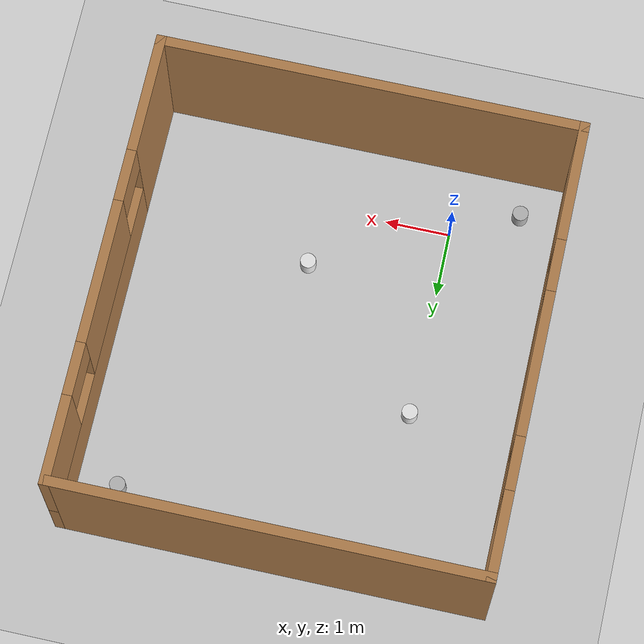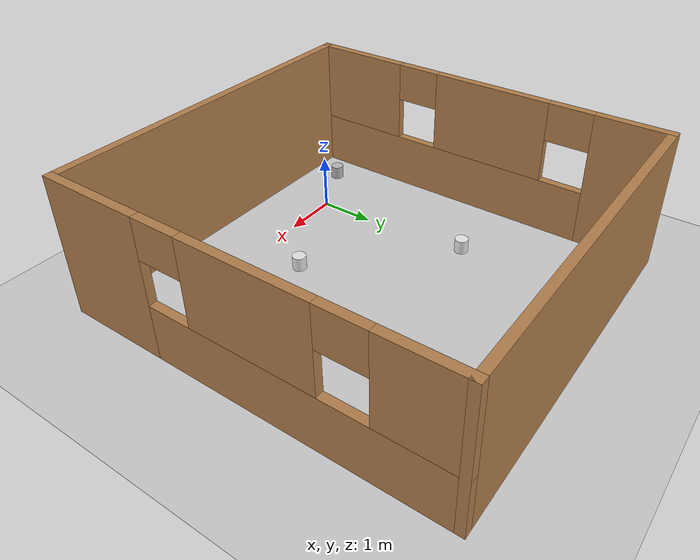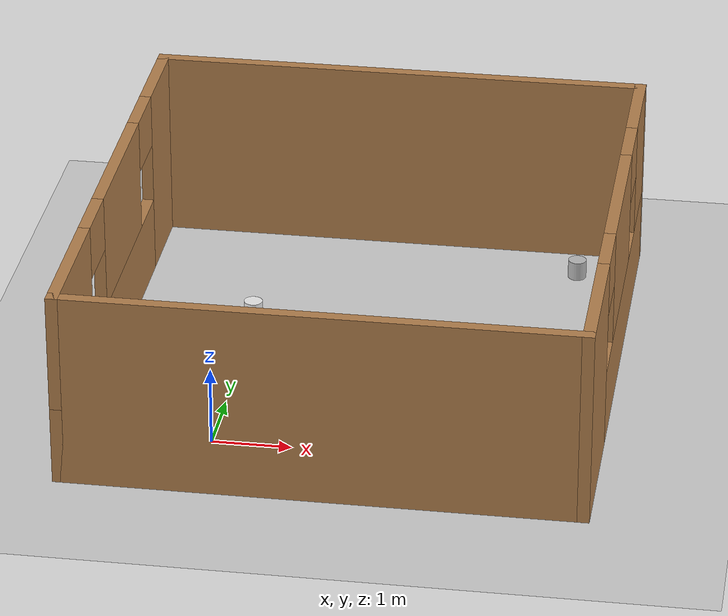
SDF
<sdf version="1.6">
 <world name="default">
  <light name="sun" type="directional">
   <pose>0 0 10 0 -0 0</pose>
   <diffuse>0.8 0.8 0.8 1</diffuse>
   <specular>0.2 0.2 0.2 1</specular>
   <attenuation>
    <range>1000</range>
    <constant>0.9</constant>
    <linear>0.01</linear>
    <quadratic>0.001</quadratic>
   </attenuation>
   <direction>0.5 0.1 -0.9</direction>
  </light>
  <model name="ground_plane">
   <static>1</static>
   <link name="link">
    <collision name="collision">
     <geometry><plane><normal>0 0 1</normal><size>100 100</size></plane></geometry>
     <surface><friction><ode><mu>100</mu><mu2>50</mu2></ode></friction></surface>
    </collision>
    <visual name="visual">
     <cast_shadows>0</cast_shadows>
     <geometry><plane><normal>0 0 1</normal><size>100 100</size></plane></geometry>
     <material>
      <script><uri>file://media/materials/scripts/gazebo.material</uri><name>Gazebo/Grey</name></script>
     </material>
    </visual>
    <velocity_decay><linear>0</linear><angular>0</angular></velocity_decay>
   </link>
  </model>
  <gravity>0 0 -9.8</gravity>
  <magnetic_field>6e-06 2.3e-05 -4.2e-05</magnetic_field>
  <atmosphere type="adiabatic"/>
  <physics name="default_physics" default="0" type="ode">
   <real_time_update_rate>000.0</real_time_update_rate>
   <max_step_size>0.001</max_step_size>
   <real_time_factor>1</real_time_factor>
  </physics>
  <model name="obstacle">
   <pose>1 2 -0.000873 -2.2e-05 2.3e-05 0</pose>
   <link name="obstacle">
    <collision name="obstacle_2">
     <pose>-1 1 0.25 0 -0 0</pose>
     <geometry><cylinder><radius>0.12</radius><length>0.25</length></cylinder></geometry>
    </collision>
    <visual name="obstacle_2">
     <pose>-1 1 0.25 0 -0 0</pose>
     <geometry><cylinder><radius>0.12</radius><length>0.25</length></cylinder></geometry>
     <material>
      <script><uri>file://media/materials/scripts/gazebo.material</uri><name>Gazebo/White</name></script>
     </material>
    </visual>
    <collision name="obstacle_3">
     <pose>1 -1 0.25 0 -0 0</pose>
     <geometry><cylinder><radius>0.12</radius><length>0.25</length></cylinder></geometry>
    </collision>
    <visual name="obstacle_3">
     <pose>1 -1 0.25 0 -0 0</pose>
     <geometry><cylinder><radius>0.12</radius><length>0.25</length></cylinder></geometry>
     <material>
      <script><uri>file://media/materials/scripts/gazebo.material</uri><name>Gazebo/White</name></script>
     </material>
    </visual>
    <inertial>
     <inertia><ixx>1</ixx><ixy>0</ixy><ixz>0</ixz><iyy>1</iyy><iyz>0</iyz><izz>1</izz></inertia>
     <mass>1</mass>
    </inertial>
   </link>
  </model>
  <model name="obstacle_5">
   <pose>-0.999999 -0.499999 0.124121 -2e-06 5e-06 -1.3e-05</pose>
   <link name="link">
    <collision name="collision">
     <geometry><cylinder><radius>0.12</radius><length>0.25</length></cylinder></geometry>
    </collision>
    <visual name="visual">
     <geometry><cylinder><radius>0.12</radius><length>0.25</length></cylinder></geometry>
    </visual>
    <inertial>
     <inertia><ixx>1</ixx><ixy>0</ixy><ixz>0</ixz><iyy>1</iyy><iyz>0</iyz><izz>1</izz></inertia>
     <mass>1</mass>
    </inertial>
   </link>
  </model>
  <model name="obstacle_6">
   <pose>4 5 0.124121 -2e-06 5e-06 -1.3e-05</pose>
   <link name="link">
    <collision name="collision">
     <geometry><cylinder><radius>0.12</radius><length>0.25</length></cylinder></geometry>
    </collision>
    <visual name="visual">
     <geometry><cylinder><radius>0.12</radius><length>0.25</length></cylinder></geometry>
    </visual>
    <inertial>
     <inertia><ixx>1</ixx><ixy>0</ixy><ixz>0</ixz><iyy>1</iyy><iyz>0</iyz><izz>1</izz></inertia>
     <mass>1</mass>
    </inertial>
   </link>
   <plugin name="obstacle_2" filename="libobstacle_2.so"/>
  </model>
  <scene><ambient>0.4 0.4 0.4 1</ambient><background>0.7 0.7 0.7 1</background><shadows>0</shadows></scene>
  <spherical_coordinates>
   <surface_model>EARTH_WGS84</surface_model>
   <latitude_deg>0</latitude_deg>
   <longitude_deg>0</longitude_deg>
   <elevation>0</elevation>
   <heading_deg>0</heading_deg>
  </spherical_coordinates>
  <model name="room_clone_clone">
   <pose>1.52319 2.27145 0 0 -0 0</pose>
   <link name="Wall_0">
    <collision name="Wall_0_Collision">
     <geometry><box><size>6.5 0.15 2.5</size></box></geometry>
     <pose>0 0 1.25 0 -0 0</pose>
    </collision>
    <visual name="Wall_0_Visual">
     <pose>0 0 1.25 0 -0 0</pose>
     <geometry><box><size>6.5 0.15 2.5</size></box></geometry>
     <material>
      <script><uri>file://media/materials/scripts/gazebo.material</uri><name>Gazebo/Wood</name></script>
      <ambient>1 1 1 1</ambient>
     </material>
    </visual>
    <pose>0 -3.425 0 0 -0 0</pose>
   </link>
   <link name="Wall_1">
    <pose>3.175 0 0 0 -0 1.5708</pose>
    <visual name="Wall_1_Visual_0">
     <pose>-2.56946 0 1.25 0 -0 0</pose>
     <geometry><box><size>1.86109 0.15 2.5</size></box></geometry>
     <material>
      <script><uri>file://media/materials/scripts/gazebo.material</uri><name>Gazebo/Wood</name></script>
      <ambient>0.760784 0.662745 0.627451 1</ambient>
     </material>
    </visual>
    <collision name="Wall_1_Collision_0">
     <geometry><box><size>1.86109 0.15 2.5</size></box></geometry>
     <pose>-2.56946 0 1.25 0 -0 0</pose>
    </collision>
    <visual name="Wall_1_Visual_1">
     <pose>0.930543 0 0.5 0 -0 0</pose>
     <geometry><box><size>5.13891 0.15 1</size></box></geometry>
     <material>
      <script><uri>file://media/materials/scripts/gazebo.material</uri><name>Gazebo/Wood</name></script>
      <ambient>0.760784 0.662745 0.627451 1</ambient>
     </material>
    </visual>
    <collision name="Wall_1_Collision_1">
     <geometry><box><size>5.13891 0.15 1</size></box></geometry>
     <pose>0.930543 0 0.5 0 -0 0</pose>
    </collision>
    <visual name="Wall_1_Visual_2">
     <pose>0.261087 0 1.75 0 -0 0</pose>
     <geometry><box><size>2.2 0.15 1.5</size></box></geometry>
     <material>
      <script><uri>file://media/materials/scripts/gazebo.material</uri><name>Gazebo/Wood</name></script>
      <ambient>0.760784 0.662745 0.627451 1</ambient>
     </material>
    </visual>
    <collision name="Wall_1_Collision_2">
     <geometry><box><size>2.2 0.15 1.5</size></box></geometry>
     <pose>0.261087 0 1.75 0 -0 0</pose>
    </collision>
    <visual name="Wall_1_Visual_3">
     <pose>2.83054 0 1.75 0 -0 0</pose>
     <geometry><box><size>1.33891 0.15 1.5</size></box></geometry>
     <material>
      <script><uri>file://media/materials/scripts/gazebo.material</uri><name>Gazebo/Wood</name></script>
      <ambient>0.760784 0.662745 0.627451 1</ambient>
     </material>
    </visual>
    <collision name="Wall_1_Collision_3">
     <geometry><box><size>1.33891 0.15 1.5</size></box></geometry>
     <pose>2.83054 0 1.75 0 -0 0</pose>
    </collision>
    <visual name="Wall_1_Visual_4">
     <pose>-1.23891 0 2.15 0 -0 0</pose>
     <geometry><box><size>0.8 0.15 0.7</size></box></geometry>
     <material>
      <script><uri>file://media/materials/scripts/gazebo.material</uri><name>Gazebo/Wood</name></script>
      <ambient>0.760784 0.662745 0.627451 1</ambient>
     </material>
    </visual>
    <collision name="Wall_1_Collision_4">
     <geometry><box><size>0.8 0.15 0.7</size></box></geometry>
     <pose>-1.23891 0 2.15 0 -0 0</pose>
    </collision>
    <visual name="Wall_1_Visual_5">
     <pose>1.76109 0 2.15 0 -0 0</pose>
     <geometry><box><size>0.8 0.15 0.7</size></box></geometry>
     <material>
      <script><uri>file://media/materials/scripts/gazebo.material</uri><name>Gazebo/Wood</name></script>
      <ambient>0.760784 0.662745 0.627451 1</ambient>
     </material>
    </visual>
    <collision name="Wall_1_Collision_5">
     <geometry><box><size>0.8 0.15 0.7</size></box></geometry>
     <pose>1.76109 0 2.15 0 -0 0</pose>
    </collision>
   </link>
   <link name="Wall_2">
    <collision name="Wall_2_Collision">
     <geometry><box><size>6.5 0.15 2.5</size></box></geometry>
     <pose>0 0 1.25 0 -0 0</pose>
    </collision>
    <visual name="Wall_2_Visual">
     <pose>0 0 1.25 0 -0 0</pose>
     <geometry><box><size>6.5 0.15 2.5</size></box></geometry>
     <material>
      <script><uri>file://media/materials/scripts/gazebo.material</uri><name>Gazebo/Wood</name></script>
      <ambient>0.921569 0.807843 0.615686 1</ambient>
     </material>
    </visual>
    <pose>0 3.425 0 0 -0 3.14159</pose>
   </link>
   <link name="Wall_3">
    <pose>-3.175 0 0 0 0 -1.5708</pose>
    <visual name="Wall_3_Visual_0">
     <pose>-2.83054 0 1.25 0 -0 0</pose>
     <geometry><box><size>1.33891 0.15 2.5</size></box></geometry>
     <material>
      <script><uri>file://media/materials/scripts/gazebo.material</uri><name>Gazebo/Wood</name></script>
      <ambient>1 1 1 1</ambient>
     </material>
    </visual>
    <collision name="Wall_3_Collision_0">
     <geometry><box><size>1.33891 0.15 2.5</size></box></geometry>
     <pose>-2.83054 0 1.25 0 -0 0</pose>
    </collision>
    <visual name="Wall_3_Visual_1">
     <pose>0.669457 0 0.5 0 -0 0</pose>
     <geometry><box><size>5.66109 0.15 1</size></box></geometry>
     <material>
      <script><uri>file://media/materials/scripts/gazebo.material</uri><name>Gazebo/Wood</name></script>
      <ambient>1 1 1 1</ambient>
     </material>
    </visual>
    <collision name="Wall_3_Collision_1">
     <geometry><box><size>5.66109 0.15 1</size></box></geometry>
     <pose>0.669457 0 0.5 0 -0 0</pose>
    </collision>
    <visual name="Wall_3_Visual_2">
     <pose>-0.261087 0 1.75 0 -0 0</pose>
     <geometry><box><size>2.2 0.15 1.5</size></box></geometry>
     <material>
      <script><uri>file://media/materials/scripts/gazebo.material</uri><name>Gazebo/Wood</name></script>
      <ambient>1 1 1 1</ambient>
     </material>
    </visual>
    <collision name="Wall_3_Collision_2">
     <geometry><box><size>2.2 0.15 1.5</size></box></geometry>
     <pose>-0.261087 0 1.75 0 -0 0</pose>
    </collision>
    <visual name="Wall_3_Visual_3">
     <pose>2.56946 0 1.75 0 -0 0</pose>
     <geometry><box><size>1.86109 0.15 1.5</size></box></geometry>
     <material>
      <script><uri>file://media/materials/scripts/gazebo.material</uri><name>Gazebo/Wood</name></script>
      <ambient>1 1 1 1</ambient>
     </material>
    </visual>
    <collision name="Wall_3_Collision_3">
     <geometry><box><size>1.86109 0.15 1.5</size></box></geometry>
     <pose>2.56946 0 1.75 0 -0 0</pose>
    </collision>
    <visual name="Wall_3_Visual_4">
     <pose>-1.76109 0 2.15 0 -0 0</pose>
     <geometry><box><size>0.8 0.15 0.7</size></box></geometry>
     <material>
      <script><uri>file://media/materials/scripts/gazebo.material</uri><name>Gazebo/Wood</name></script>
      <ambient>1 1 1 1</ambient>
     </material>
    </visual>
    <collision name="Wall_3_Collision_4">
     <geometry><box><size>0.8 0.15 0.7</size></box></geometry>
     <pose>-1.76109 0 2.15 0 -0 0</pose>
    </collision>
    <visual name="Wall_3_Visual_5">
     <pose>1.23891 0 2.15 0 -0 0</pose>
     <geometry><box><size>0.8 0.15 0.7</size></box></geometry>
     <material>
      <script><uri>file://media/materials/scripts/gazebo.material</uri><name>Gazebo/Wood</name></script>
      <ambient>1 1 1 1</ambient>
     </material>
    </visual>
    <collision name="Wall_3_Collision_5">
     <geometry><box><size>0.8 0.15 0.7</size></box></geometry>
     <pose>1.23891 0 2.15 0 -0 0</pose>
    </collision>
   </link>
   <static>1</static>
  </model>
 </world>
</sdf>
